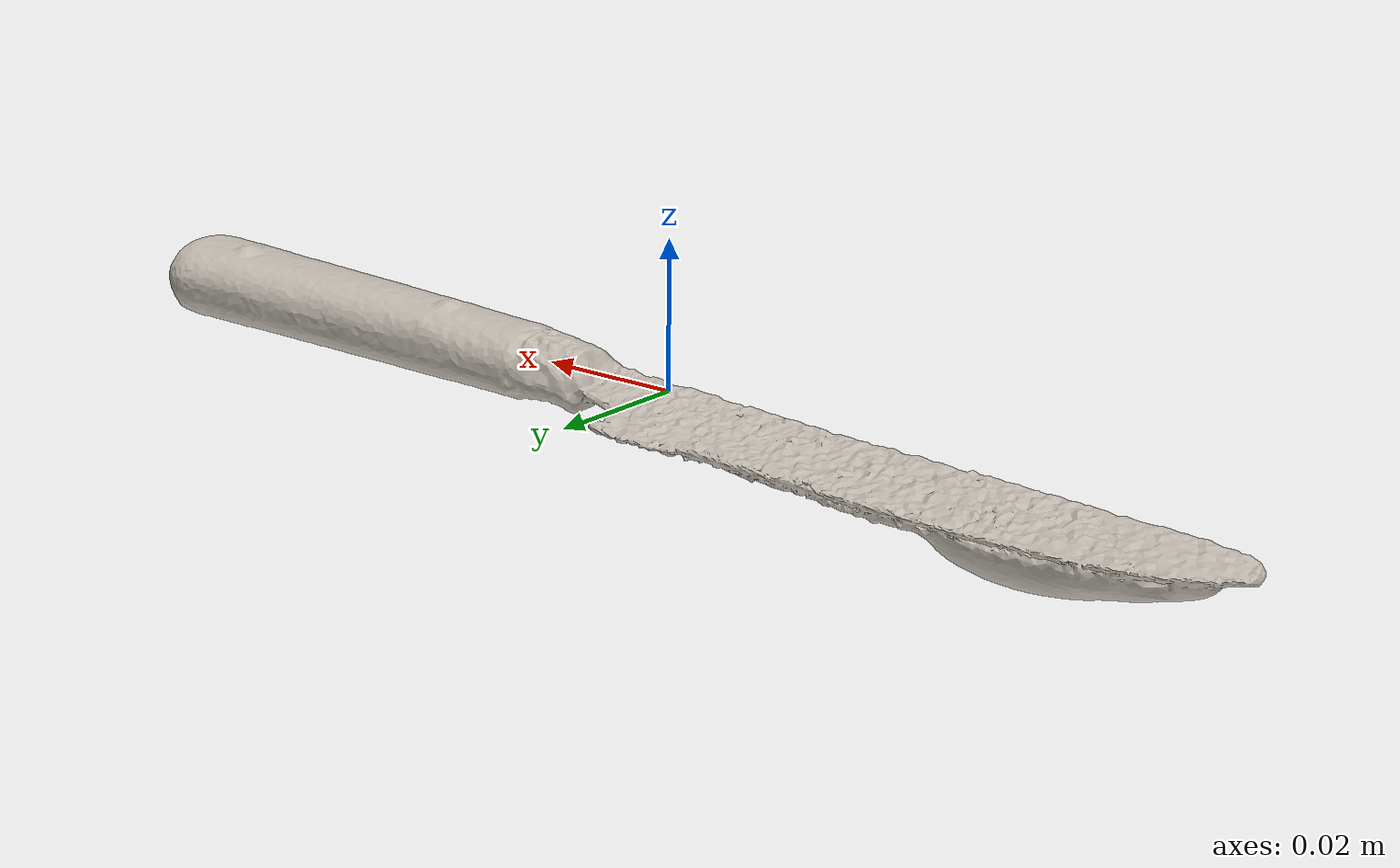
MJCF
<mujoco model="bread">
  <asset>
    <mesh file="nontextured.stl" name="obj_mesh" scale="0.8 0.8 0.8"/>
    <texture file="../../../../../textures/bread.png" type="2d" name="tex-bread" />
    <material name="bread" reflectance="0.7" texrepeat="15 15" texture="tex-bread" texuniform="true"/>
  </asset>
  <worldbody>
    <body>
      <body name="collision">
        <geom pos="0.019428000000000008 0.027415500000000002 -0.0039180000000000005" mesh="obj_mesh" type="mesh" solimp="0.998 0.998 0.001" solref="0.001 1" density="50" friction="0.95 0.3 0.1"  material="bread" group="1" condim="4"/>
      </body>
      <body name="visual">
        <geom pos="0.019428000000000008 0.027415500000000002 -0.0039180000000000005" mesh="obj_mesh" type="mesh" material="bread"  conaffinity="0" contype="0"  group="0" mass="0.0001"/>
        <geom pos="0.019428000000000008 0.027415500000000002 -0.0039180000000000005" mesh="obj_mesh" type="mesh" material="bread"  conaffinity="0" contype="0"  group="1" mass="0.0001"/>
      </body>
      <site rgba="0 0 0 0" size="0.005" pos="0 0 -0.011307000000000001" name="bottom_site"/>
      <site rgba="0 0 0 0" size="0.005" pos="0 0 0.011307000000000001" name="top_site"/>
      <site rgba="0 0 0 0" size="0.005" pos="0.10741500000000001 0.010302500000000001 0.011307000000000001" name="horizontal_radius_site"/>
    </body>
  </worldbody>
</mujoco>
